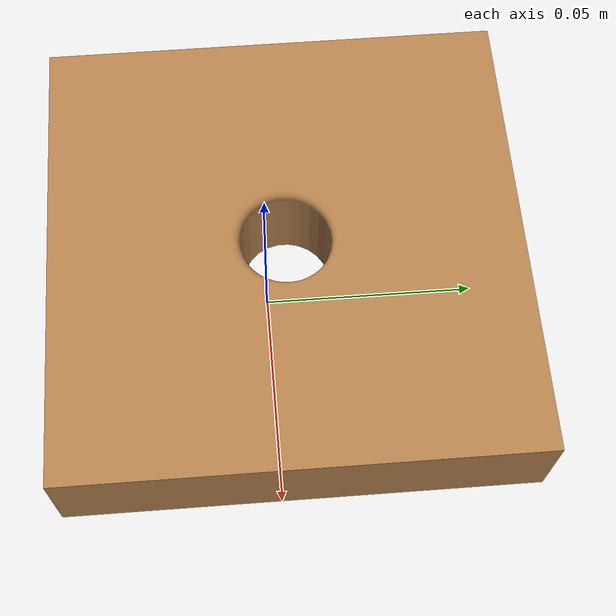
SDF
<?xml version='1.0'?>
<sdf version='1.6'>
  <model name='peg_board'>
    <static>true</static>
    <link name='board'>
      <pose frame=''>0 0 0 0 0 0</pose>
      <self_collide>0</self_collide>
      <kinematic>0</kinematic>
      <gravity>1</gravity>
      <inertial>
        <mass>1</mass>
        <pose frame=''>-0.050000 0.05 0.015 0 0 0</pose>
        <inertia>
          <ixx>0.895563</ixx>
          <ixy>-0.444935</ixy>
          <ixz>0.0</ixz>
          <iyy>0.895563</iyy>
          <iyz>0</iyz>
          <izz>1</izz>
        </inertia>
      </inertial>
      <visual name='visual'>
        <pose frame=''>0.050000 -0.05 0 0 -0 0</pose>
        <geometry>
          <mesh>
            <uri>model://peg_board/meshes/board.stl</uri>
              <scale>1.1 1.1 .8</scale>
          </mesh>
        </geometry>
        <material>
          <script>
            <uri>model://media/materials/scripts/gazebo.material</uri>
            <name>Gazebo/Wood</name>
          </script>
        </material>
        <transparency>0</transparency>
        <cast_shadows>1</cast_shadows>
      </visual>
      <collision name='collision'>
        <pose frame=''>0.050000 -0.05 0 0 0 0</pose>
        <laser_retro>0</laser_retro>
        <max_contacts>10</max_contacts>
        <geometry>
          <mesh>
            <uri>model://peg_board/meshes/board.stl</uri>
            <scale>1.1 1.1 0.8</scale>
          </mesh>
        </geometry>
        <surface>
          <friction>
            <ode>
              <mu>1</mu>
              <mu2>1</mu2>
              <fdir1>0 0 0</fdir1>
              <slip1>0.1</slip1>
              <slip2>0.1</slip2>
            </ode>
            <torsional>
              <coefficient>1</coefficient>
              <patch_radius>0</patch_radius>
              <surface_radius>0</surface_radius>
              <use_patch_radius>1</use_patch_radius>
              <ode>
                <slip>0</slip>
              </ode>
            </torsional>
          </friction>
          <bounce>
            <restitution_coefficient>0</restitution_coefficient>
            <threshold>1e+06</threshold>
          </bounce>
          <contact>
            <collide_without_contact>0</collide_without_contact>
            <collide_without_contact_bitmask>1</collide_without_contact_bitmask>
            <collide_bitmask>1</collide_bitmask>
            <ode>
              <soft_cfm>0</soft_cfm>
              <soft_erp>0.1</soft_erp>
              <kp>1e+13</kp>
              <kd>1</kd>
              <max_vel>0.01</max_vel>
              <min_depth>0</min_depth>
            </ode>
            <bullet>
              <split_impulse>1</split_impulse>
              <split_impulse_penetration_threshold>-0.01</split_impulse_penetration_threshold>
              <soft_cfm>0</soft_cfm>
              <soft_erp>0.1</soft_erp>
              <kp>1e+13</kp>
              <kd>1</kd>
            </bullet>
          </contact>
        </surface>
      </collision>
    </link>
    <static>1</static>
    <allow_auto_disable>1</allow_auto_disable>
  </model>
</sdf>
